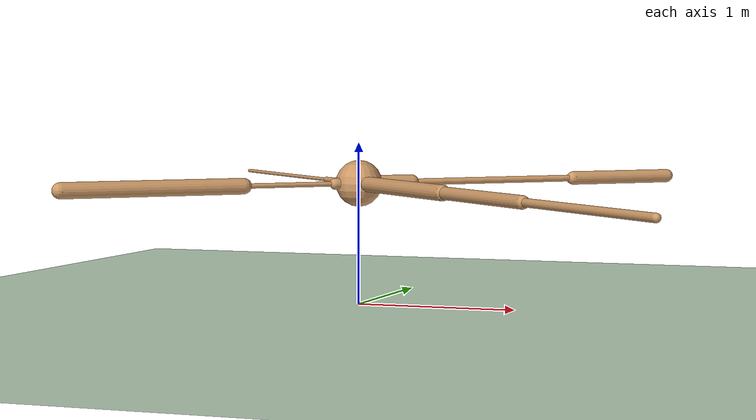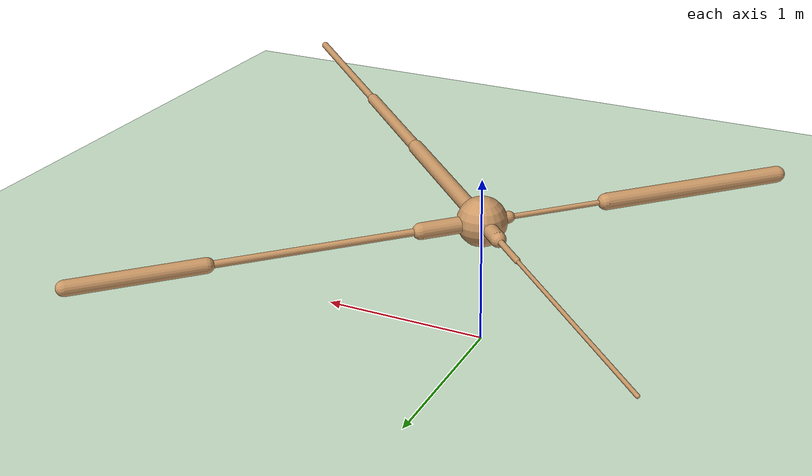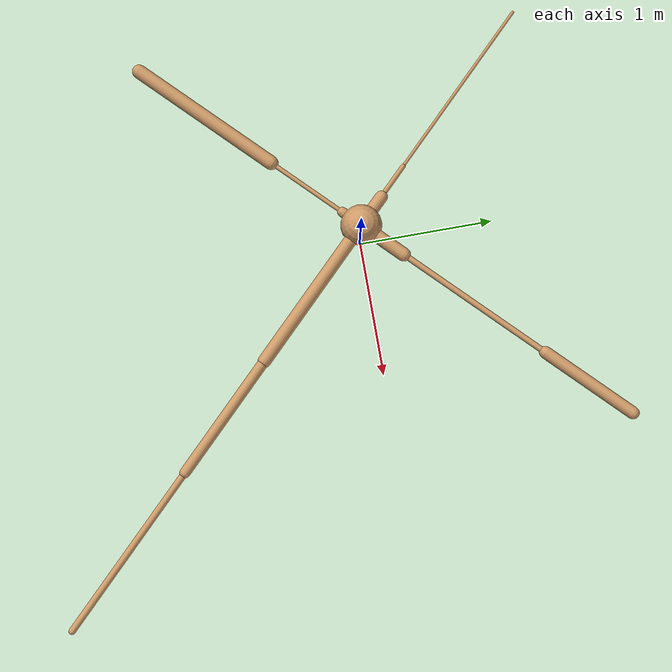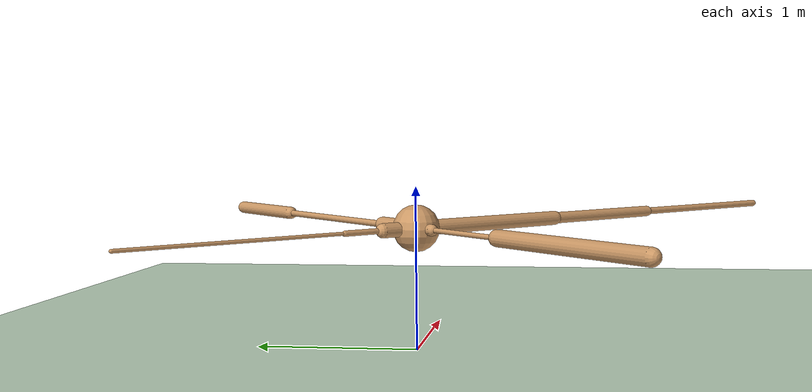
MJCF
<mujoco model="ant">
  <compiler angle="degree" coordinate="local" inertiafromgeom="true" />
  <option integrator="RK4" timestep="0.01" />
  <custom>
    <numeric data="0.0 0.0 0.55 1.0 0.0 0.0 0.0 0.0 1.0 0.0 -1.0 0.0 -1.0 0.0 1.0" name="init_qpos" />
  </custom>
  <default>
    <joint armature="1" damping="1" limited="true" />
    <geom conaffinity="0" condim="3" density="5.0" friction="1 0.5 0.5" margin="0.01" rgba="0.8 0.6 0.4 1" />
  </default>
  <asset>
    <texture builtin="gradient" height="100" rgb1="1 1 1" rgb2="0 0 0" type="skybox" width="100" />
    <texture builtin="flat" height="1278" mark="cross" markrgb="1 1 1" name="texgeom" random="0.01" rgb1="0.8 0.6 0.4" rgb2="0.8 0.6 0.4" type="cube" width="127" />
    <texture builtin="checker" height="100" name="texplane" rgb1="0 0 0" rgb2="0.8 0.8 0.8" type="2d" width="100" />
    <material name="MatPlane" reflectance="0.5" shininess="1" specular="1" texrepeat="60 60" texture="texplane" />
    <material name="geom" texture="texgeom" texuniform="true" />
  </asset>
  <worldbody>
    <light cutoff="100" diffuse="1 1 1" dir="-0 0 -1.3" directional="true" exponent="1" pos="0 0 1.3" specular=".1 .1 .1" />
    <geom conaffinity="1" condim="3" material="MatPlane" name="floor" pos="0 0 0" rgba="0.8 0.9 0.8 1" size="40 40 40" type="plane" />
    <body name="torso" pos="0 0 0.75">
      <camera name="track" mode="trackcom" pos="0 -11 5" xyaxes="1 0 0 0 0.5 1" />
      <geom name="torso_geom" pos="0 0 0" size="0.14362777769565582" type="sphere" />
      <joint armature="0" damping="0" limited="false" margin="0.01" name="root" pos="0 0 0" type="free" />
      <body name="front_left_leg" pos="0 0 0">
        <geom fromto="0 0 0 0.2540340721607208 0.2540340721607208 0" name="aux_1_geom" size="0.047359563410282135" type="capsule" />
        <body name="aux_1" pos="0.2540340721607208 0.2540340721607208 0">
          <joint axis="0 0 1" name="hip_1" pos="0.0 0.0 0.0" range="-30 30" type="hinge" />
          <geom fromto="0 0 0 0.828063428401947 0.828063428401947 0" name="left_leg_geom" size="0.020756784826517105" type="capsule" />
          <body name="left_leg_geom_aux" pos="0.828063428401947 0.828063428401947 0">
            <joint axis="-1 1 0" name="ankle_1" pos="0.0 0.0 0.0" range="30 70" type="hinge" />
            <geom fromto="0 0 0 0.5066127777099609 0.5066127777099609 0" name="left_ankle_geom" size="0.043028783053159714" type="capsule" />
          </body>
        </body>
      </body>
      <body name="front_right_leg" pos="0 0 0">
        <geom fromto="0 0 0 -0.1704680323600769 0.1704680323600769 0" name="aux_2_geom" size="0.04457409307360649" type="capsule" />
        <body name="aux_2" pos="-0.1704680323600769 0.1704680323600769 0">
          <joint axis="0 0 1" name="hip_2" pos="0.0 0.0 0.0" range="-30 30" type="hinge" />
          <geom fromto="0 0 0 -0.18720346689224243 0.18720346689224243 0" name="right_leg_geom" size="0.017420940101146698" type="capsule" />
          <body name="right_leg_geom_aux" pos="-0.18720346689224243 0.18720346689224243 0">
            <joint axis="1 1 0" name="ankle_2" pos="0.0 0.0 0.0" range="-70 -30" type="hinge" />
            <geom fromto="0 0 0 -0.9540731906890869 0.9540731906890869 0" name="right_ankle_geom" size="0.011106681078672409" type="capsule" />
          </body>
        </body>
      </body>
      <body name="back_leg" pos="0 0 0">
        <geom fromto="0 0 0 -0.11275526881217957 -0.11275526881217957 0" name="aux_3_geom" size="0.03514908254146576" type="capsule" />
        <body name="aux_3" pos="-0.11275526881217957 -0.11275526881217957 0">
          <joint axis="0 0 1" name="hip_3" pos="0.0 0.0 0.0" range="-30 30" type="hinge" />
          <geom fromto="0 0 0 -0.42591148614883423 -0.42591148614883423 0" name="back_leg_geom" size="0.015202346257865429" type="capsule" />
          <body name="back_leg_geom_aux" pos="-0.42591148614883423 -0.42591148614883423 0">
            <joint axis="-1 1 0" name="ankle_3" pos="0.0 0.0 0.0" range="-70 -30" type="hinge" />
            <geom fromto="0 0 0 -0.8014615178108215 -0.8014615178108215 0" name="third_ankle_geom" size="0.049228813499212265" type="capsule" />
          </body>
        </body>
      </body>
      <body name="right_back_leg" pos="0 0 0">
        <geom fromto="0 0 0 0.8110882639884949 -0.8110882639884949 0" name="aux_4_geom" size="0.04629814997315407" type="capsule" />
        <body name="aux_4" pos="0.8110882639884949 -0.8110882639884949 0">
          <joint axis="0 0 1" name="hip_4" pos="0.0 0.0 0.0" range="-30 30" type="hinge" />
          <geom fromto="0 0 0 0.6521703600883484 -0.6521703600883484 0" name="rightback_leg_geom" size="0.03745359554886818" type="capsule" />
          <body name="rightback_leg_geom_aux" pos="0.6521703600883484 -0.6521703600883484 0">
            <joint axis="1 1 0" name="ankle_4" pos="0.0 0.0 0.0" range="30 70" type="hinge" />
            <geom fromto="0 0 0 0.9006041884422302 -0.9006041884422302 0" name="fourth_ankle_geom" size="0.023975441232323647" type="capsule" />
          </body>
        </body>
      </body>
    </body>
  </worldbody>
  <actuator>
    <motor ctrllimited="true" ctrlrange="-1.0 1.0" joint="hip_4" gear="150" />
    <motor ctrllimited="true" ctrlrange="-1.0 1.0" joint="ankle_4" gear="150" />
    <motor ctrllimited="true" ctrlrange="-1.0 1.0" joint="hip_1" gear="150" />
    <motor ctrllimited="true" ctrlrange="-1.0 1.0" joint="ankle_1" gear="150" />
    <motor ctrllimited="true" ctrlrange="-1.0 1.0" joint="hip_2" gear="150" />
    <motor ctrllimited="true" ctrlrange="-1.0 1.0" joint="ankle_2" gear="150" />
    <motor ctrllimited="true" ctrlrange="-1.0 1.0" joint="hip_3" gear="150" />
    <motor ctrllimited="true" ctrlrange="-1.0 1.0" joint="ankle_3" gear="150" />
  </actuator>
</mujoco>
